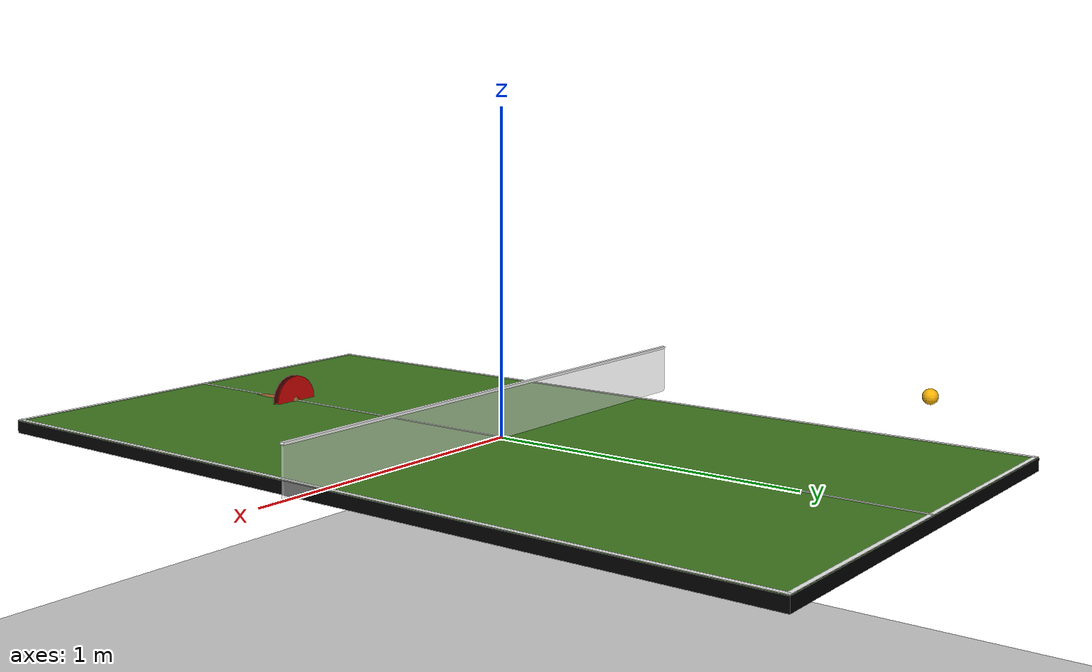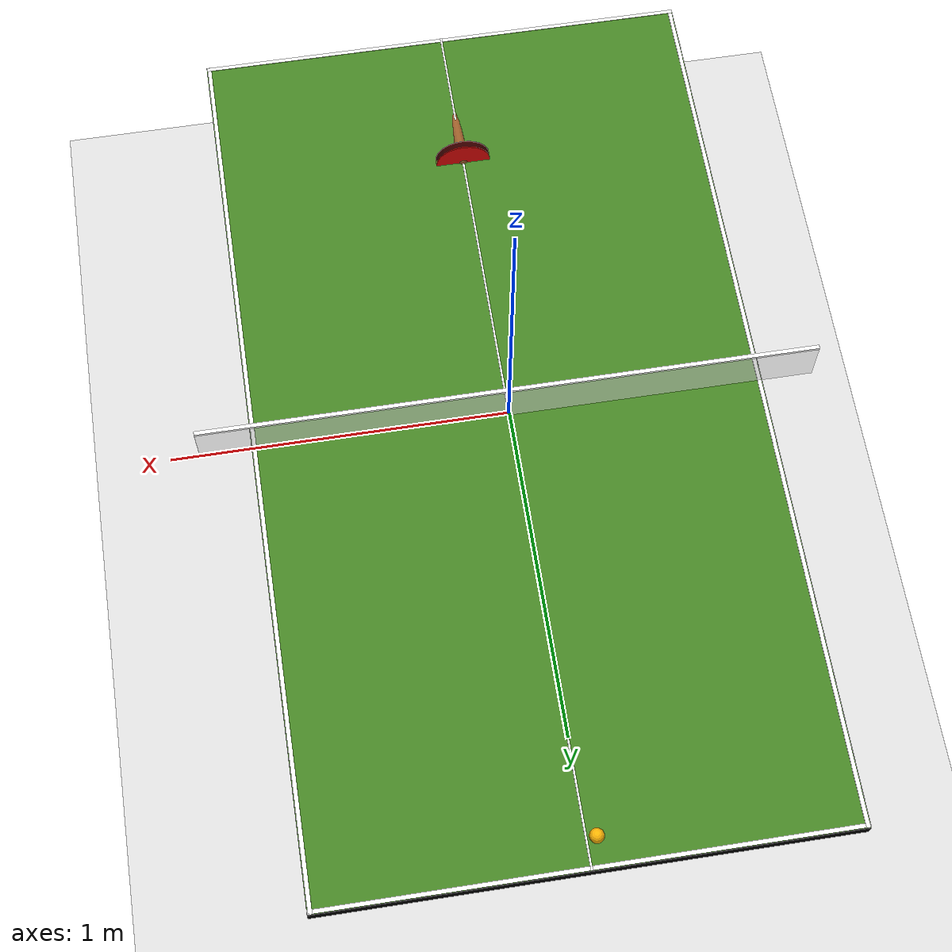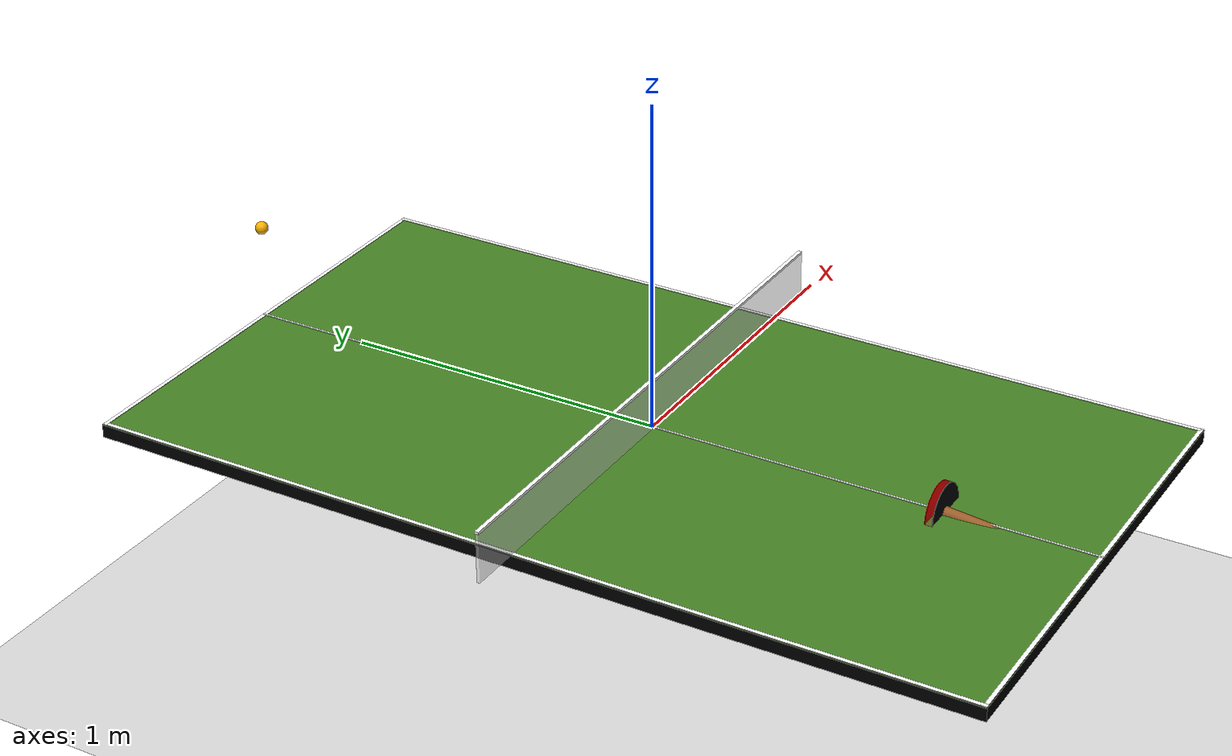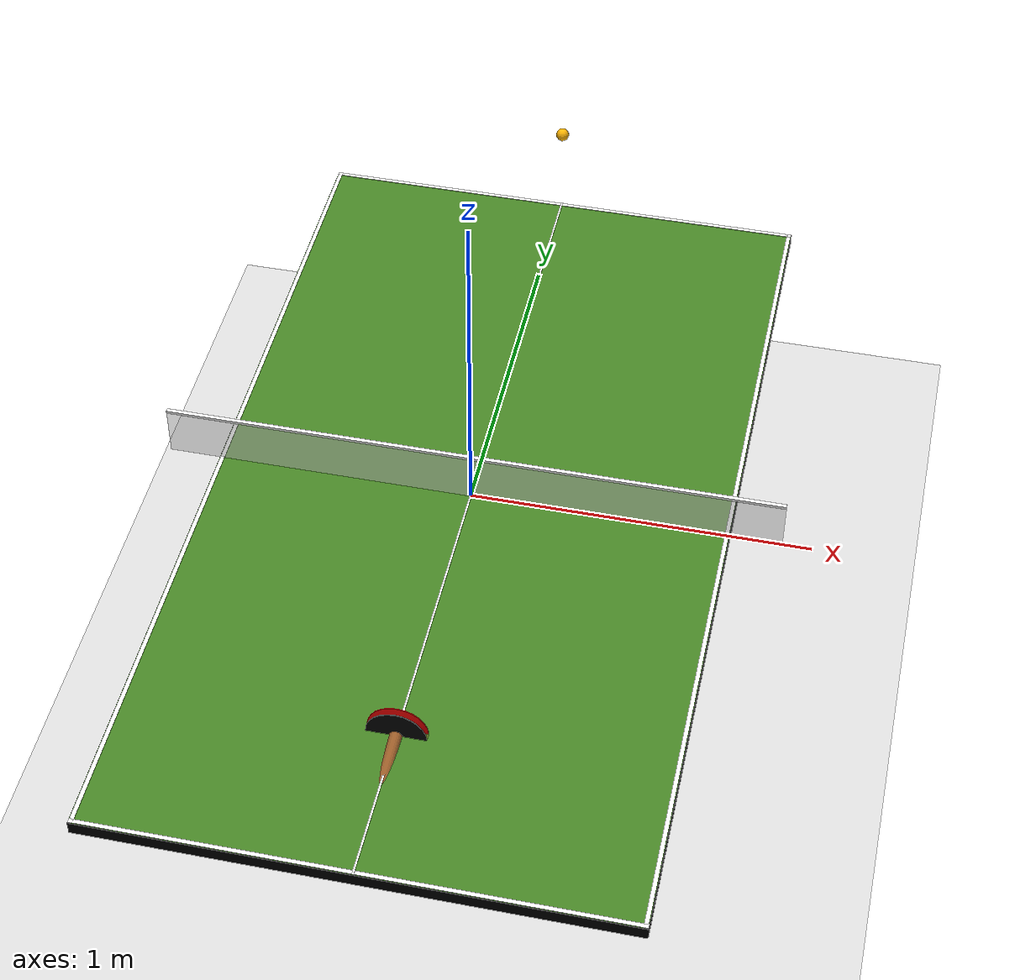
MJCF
<?xml version="1.0" encoding="utf-8"?>
<mujoco model="single_paddle_receive_dataset_frame">
  <compiler angle="radian" autolimits="true"/>

  <option density="1.225"
          viscosity="1.8e-5"
          wind="0 0 0"
          integrator="implicitfast"
          timestep="0.001"
          cone="elliptic"
          iterations="80"
          solver="Newton"/>

  <visual>
    <headlight diffuse="0.55 0.55 0.55" ambient="0.35 0.35 0.35" specular="0.3 0.3 0.3"/>
    <map znear="0.01" zfar="30"/>
  </visual>

  <asset>
    <texture type="skybox" builtin="gradient" rgb1="0.55 0.65 0.8" rgb2="0.05 0.05 0.07" width="256" height="256"/>
    <texture type="2d" name="groundplane" builtin="checker" mark="edge" rgb1="0.9 0.9 0.9" rgb2="0.8 0.8 0.8" markrgb="0 0 0" width="300" height="300"/>
    <material name="groundplane" texture="groundplane" texuniform="true" texrepeat="5 5" reflectance="0.25"/>
    <material name="table_green" rgba="0.27 0.51 0.14 1" reflectance="0.15"/>
    <material name="line_white" rgba="1 1 1 1"/>
    <material name="net_white" rgba="1 1 1 0.55"/>
    <material name="ball_orange" rgba="0.98 0.70 0.015 1" reflectance="0.25"/>
    <material name="paddle_red" rgba="0.85 0.03 0.02 1" reflectance="0.15"/>
    <material name="paddle_black" rgba="0.02 0.02 0.02 1" reflectance="0.15"/>
    <material name="paddle_wood" rgba="0.60 0.36 0.16 1" reflectance="0.08"/>
    <material name="paddle_collision_mat" rgba="1 0 0 0.22"/>
  </asset>

  <default>
    <default class="paddle_joint">
      <joint damping="1.0" armature="0.002" frictionloss="0.001"/>
    </default>
    <default class="paddle_motor">
      <position ctrllimited="true" forcelimited="true" gear="1"/>
    </default>
  </default>

  <worldbody>
    <light name="main_light" pos="0 -2.5 4" dir="0 0 -1" diffuse="1 1 1" specular="0.5 0.5 0.5"/>
    <geom name="floor" type="plane" pos="0 0 -0.76" size="5 5 0.1" material="groundplane"/>

    <body name="table" pos="0 0 0">
      <geom name="geom_table" type="box" pos="0 0 -0.02" size="0.7625 1.37 0.02" material="table_green"/>
      <geom name="geom_table_overlay"
            type="box"
            pos="0 0 -0.021"
            size="0.7635 1.371 0.02"
            contype="0"
            conaffinity="0"
            group="1"
            density="0"
            rgba="0 0 0 1"/>

      <geom name="line_left" type="box" pos="-0.755 0 0.001" size="0.006 1.37 0.001" material="line_white" contype="0" conaffinity="0"/>
      <geom name="line_right" type="box" pos="0.755 0 0.001" size="0.006 1.37 0.001" material="line_white" contype="0" conaffinity="0"/>
      <geom name="line_near" type="box" pos="0 -1.363 0.001" size="0.7625 0.006 0.001" material="line_white" contype="0" conaffinity="0"/>
      <geom name="line_far" type="box" pos="0 1.363 0.001" size="0.7625 0.006 0.001" material="line_white" contype="0" conaffinity="0"/>
      <geom name="line_center" type="box" pos="0 0 0.002" size="0.003 1.37 0.001" material="line_white" contype="0" conaffinity="0"/>

      <geom name="geom_net" type="box" pos="0 0 0.07625" size="0.915 0.005 0.07625" material="net_white"/>
      <geom name="net_band" type="box" pos="0 0 0.154" size="0.915 0.006 0.004" material="line_white" contype="0" conaffinity="0"/>
    </body>

    <body name="ball" pos="0.0 1.35 0.30">
      <freejoint name="ball_freejoint"/>
      <inertial pos="0 0 0" mass="2.7e-3" diaginertia="7.2e-7 7.2e-7 7.2e-7"/>
      <geom name="geom_ball"
            type="sphere"
            size="0.02"
            shellinertia="false"
            fluidcoef="0.235 0.25 0.0 1.0 1.0"
            fluidshape="ellipsoid"
            solref="-100000 -0"
            group="1"
            material="ball_orange"/>
      <site name="ball_site" pos="0 0 0" size="0.006" rgba="1 0 0 1"/>
    </body>

    <body name="paddle_x_slide" pos="0 -0.90 0">
      <inertial pos="0 0 0" mass="0.001" diaginertia="1e-6 1e-6 1e-6"/>
      <joint name="paddle_x" type="slide" axis="1 0 0" class="paddle_joint"/>
      <body name="paddle_y_slide" pos="0 0 0">
        <inertial pos="0 0 0" mass="0.001" diaginertia="1e-6 1e-6 1e-6"/>
        <joint name="paddle_y" type="slide" axis="0 1 0" class="paddle_joint"/>
        <body name="paddle_z_slide" pos="0 0 0">
          <inertial pos="0 0 0" mass="0.001" diaginertia="1e-6 1e-6 1e-6"/>
          <joint name="paddle_z" type="slide" axis="0 0 1" class="paddle_joint"/>
          <body name="paddle_roll_body" pos="0 0 0">
            <inertial pos="0 0 0" mass="0.001" diaginertia="1e-6 1e-6 1e-6"/>
            <joint name="paddle_roll" type="hinge" axis="1 0 0" class="paddle_joint"/>
            <body name="paddle_pitch_body" pos="0 0 0">
              <inertial pos="0 0 0" mass="0.001" diaginertia="1e-6 1e-6 1e-6"/>
              <joint name="paddle_pitch" type="hinge" axis="0 1 0" class="paddle_joint"/>
              <body name="paddle_yaw_body" pos="0 0 0">
                <inertial pos="0 0 0" mass="0.001" diaginertia="1e-6 1e-6 1e-6"/>
                <joint name="paddle_yaw" type="hinge" axis="0 0 1" class="paddle_joint"/>

                <body name="paddle" pos="0 0 0">
                  <site name="paddle_center_site" pos="0 0 0" size="0.012" rgba="0 1 0 1"/>
                  <site name="paddle_face_site" pos="0 0.010 0" size="0.006" rgba="0 0 1 1"/>

                  <geom name="paddle_collision"
                        type="cylinder"
                        pos="0 0 0"
                        quat="0.7071068 0.7071068 0 0"
                        size="0.085 0.010"
                        mass="0.08"
                        material="paddle_collision_mat"/>

                  <geom name="paddle_red_face"
                        type="cylinder"
                        pos="0 0.011 0"
                        quat="0.7071068 0.7071068 0 0"
                        size="0.085 0.001"
                        material="paddle_red"
                        contype="0" conaffinity="0"/>
                  <geom name="paddle_black_face"
                        type="cylinder"
                        pos="0 -0.011 0"
                        quat="0.7071068 0.7071068 0 0"
                        size="0.085 0.001"
                        material="paddle_black"
                        contype="0" conaffinity="0"/>
                  <geom name="paddle_handle"
                        type="capsule"
                        fromto="0 0 0 0 -0.20 -0.02"
                        size="0.018"
                        mass="0.04"
                        material="paddle_wood"/>
                </body>
              </body>
            </body>
          </body>
        </body>
      </body>
    </body>

    <camera name="side_view" pos="3.0 -3.0 1.8" xyaxes="0.707 0.707 0 -0.29 0.29 0.912"/>
    <camera name="receiver_view" pos="0 -2.5 1.2" xyaxes="1 0 0 0 0.3 0.95"/>
    <camera name="top_view" pos="0 0 4.2" xyaxes="1 0 0 0 1 0"/>
  </worldbody>

  <contact>
    <pair geom1="geom_ball" geom2="geom_table"
          solref="-1000000 -17"
          friction="0.1 0.1 0.005 0.0001 0.0001"
          solimp="0.98 0.99 0.001 0.5 2"
          solreffriction="-0.0 -200.0"/>
    <pair geom1="geom_ball" geom2="paddle_collision"
          solref="-500000 -24"
          friction="0.7 0.7 0.012 0.0005 0.0005"
          solimp="0.96 0.995 0.001 0.5 2"
          solreffriction="-0.0 -180.0"/>
  </contact>

  <actuator>
    <position name="paddle_x_pos" joint="paddle_x" kp="500" ctrlrange="-0.60 0.60" class="paddle_motor" forcerange="-250 250"/>
    <position name="paddle_y_pos" joint="paddle_y" kp="500" ctrlrange="-1.25 -0.15" class="paddle_motor" forcerange="-250 250"/>
    <position name="paddle_z_pos" joint="paddle_z" kp="600" ctrlrange="0.1 0.60" class="paddle_motor" forcerange="-300 300"/>
    <position name="paddle_roll_pos" joint="paddle_roll" kp="80" ctrlrange="-3.15 3.15" class="paddle_motor" forcerange="-40 40"/>
    <position name="paddle_pitch_pos" joint="paddle_pitch" kp="80" ctrlrange="-3.15 3.15" class="paddle_motor" forcerange="-40 40"/>
    <position name="paddle_yaw_pos" joint="paddle_yaw" kp="80" ctrlrange="-3.15 3.15" class="paddle_motor" forcerange="-40 40"/>
  </actuator>
</mujoco>
